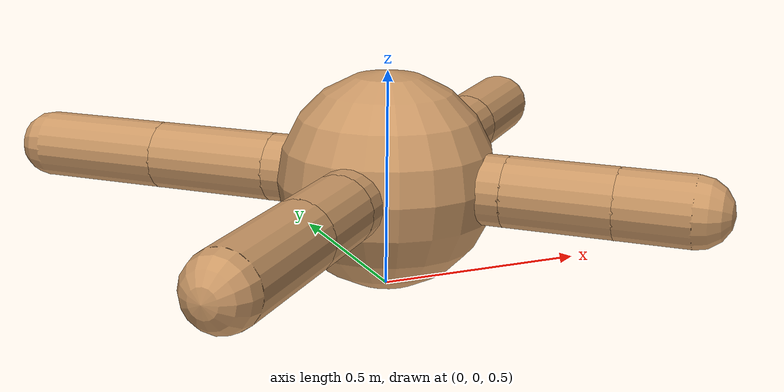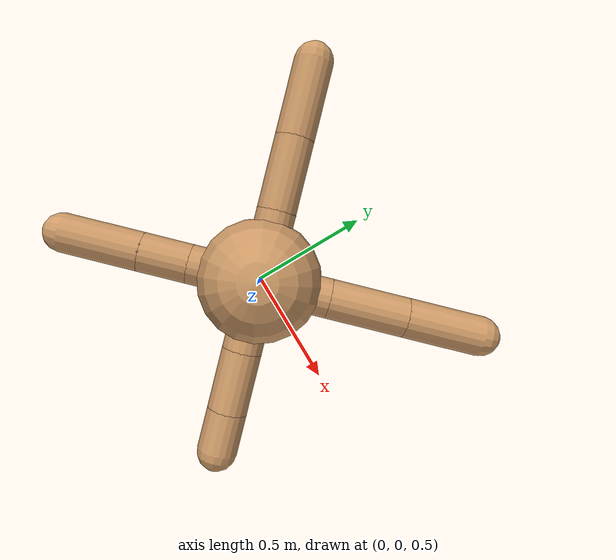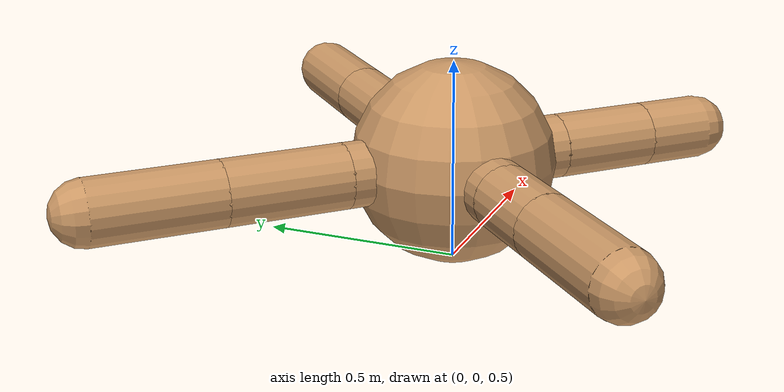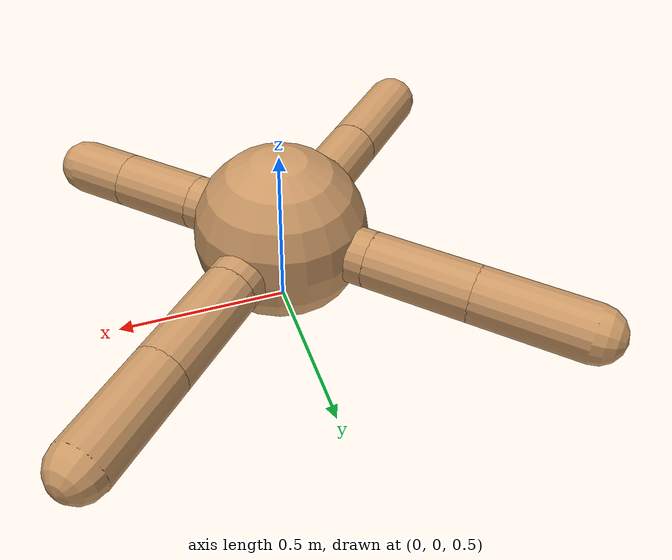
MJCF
<?xml version="1.0" ?>
<mujoco>
    <default>
        <joint armature="1" damping="1" limited="true"/>
        <geom condim="3" conaffinity="0" density="5.0" friction="1 0.5 0.5" margin="0.01" rgba="0.8 0.6 0.4 1"/>
    </default>
    <worldbody>
        <body name="Base" pos="0.0 0.0 0.75">
            <joint type="free" armature="0" damping="0" limited="false" margin="0.01" pos="0 0 0"/>
            <geom type="sphere" rgba="0.8 0.6 0.4 1" size="0.25"/>
            <camera name="track" mode="trackcom" pos="0 -3 0.3" xyaxes="1 0 0 0 0 1"/>
            <geom name="limb0" type="capsule" fromto="0 0 0 0.2 0.2 0.0" size="0.08"/>
            <body name="rod_0.1" pos="0.3096939811746259 0.3096939811746259 0.0">
                <geom type="capsule" fromto="-0.10969398117462587 -0.10969398117462587 -0.0 0.10969398117462587 0.10969398117462587 0.0" size="0.08" name="geom_0.1"/>
                <site pos="0 0 0" quat="0.9238795325112867 0.0 0.0 0.38268343236508984" name="site_0.1"/>
                <joint type="hinge" pos="-0.10969398117462587 -0.10969398117462587 -0.0" axis="0 0 1" range="-30 30" name="joint_Base=rod_0.1"/>
                <body pos="-0.10969398117462587 -0.10969398117462587 -0.0" name="p0">
                    <site name="p0"/>
                </body>
                <body name="rod_1.2" pos="0.21643958648267544 0.21643958648267544 0.0">
                    <geom type="capsule" fromto="-0.10674560530804958 -0.10674560530804958 -0.0 0.10674560530804958 0.10674560530804958 0.0" size="0.08" name="geom_1.2"/>
                    <site pos="0 0 0" quat="0.9238795325112867 0.0 0.0 0.3826834323650898" name="site_1.2"/>
                    <joint type="hinge" pos="-0.10674560530804958 -0.10674560530804958 -0.0" axis="-1 1 0" range="30 70" name="joint_rod_0.1=rod_1.2"/>
                    <body pos="-0.10674560530804958 -0.10674560530804958 -0.0" name="p1">
                        <site name="p1"/>
                    </body>
                </body>
            </body>
            <geom name="limb1" type="capsule" fromto="0 0 0 -0.2 0.2 0.0" size="0.08"/>
            <body name="rod_3.4" pos="-0.3052490165335061 0.3052490165335061 0.0">
                <geom type="capsule" fromto="0.10524901653350607 -0.10524901653350607 -0.0 -0.10524901653350607 0.10524901653350607 0.0" size="0.08" name="geom_3.4"/>
                <site pos="0 0 0" quat="0.38268343236508984 0.0 -0.0 0.9238795325112867" name="site_3.4"/>
                <joint type="hinge" pos="0.10524901653350607 -0.10524901653350607 -0.0" axis="0 0 1" range="-30 30" name="joint_Base=rod_3.4"/>
                <body pos="0.10524901653350607 -0.10524901653350607 -0.0" name="p3">
                    <site name="p3"/>
                </body>
                <body name="rod_4.5" pos="-0.21644347980435832 0.21644347980435832 0.0">
                    <geom type="capsule" fromto="0.11119446327085225 -0.11119446327085225 -0.0 -0.11119446327085225 0.11119446327085225 0.0" size="0.08" name="geom_4.5"/>
                    <site pos="0 0 0" quat="0.38268343236508984 0.0 -0.0 0.9238795325112867" name="site_4.5"/>
                    <joint type="hinge" pos="0.11119446327085225 -0.11119446327085225 -0.0" axis="1 1 0" range="-70 -30" name="joint_rod_3.4=rod_4.5"/>
                    <body pos="0.11119446327085225 -0.11119446327085225 -0.0" name="p4">
                        <site name="p4"/>
                    </body>
                </body>
            </body>
            <geom name="limb2" type="capsule" fromto="0 0 0 -0.2 -0.2 0.0" size="0.08"/>
            <body name="rod_6.7" pos="-0.2694520638735073 -0.2694520638735073 0.0">
                <geom type="capsule" fromto="0.0694520638735073 0.0694520638735073 -0.0 -0.0694520638735073 -0.0694520638735073 0.0" size="0.08" name="geom_6.7"/>
                <site pos="0 0 0" quat="0.38268343236508984 0.0 -0.0 -0.9238795325112867" name="site_6.7"/>
                <joint type="hinge" pos="0.0694520638735073 0.0694520638735073 -0.0" axis="0 0 1" range="-30 30" name="joint_Base=rod_6.7"/>
                <body pos="0.0694520638735073 0.0694520638735073 -0.0" name="p6">
                    <site name="p6"/>
                </body>
                <body name="rod_7.8" pos="-0.182060959104595 -0.182060959104595 0.0">
                    <geom type="capsule" fromto="0.11260889523108769 0.11260889523108769 -0.0 -0.11260889523108769 -0.11260889523108769 0.0" size="0.08" name="geom_7.8"/>
                    <site pos="0 0 0" quat="0.38268343236508984 0.0 -0.0 -0.9238795325112867" name="site_7.8"/>
                    <joint type="hinge" pos="0.11260889523108769 0.11260889523108769 -0.0" axis="-1 1 0" range="-70 -30" name="joint_rod_6.7=rod_7.8"/>
                    <body pos="0.11260889523108769 0.11260889523108769 -0.0" name="p7">
                        <site name="p7"/>
                    </body>
                </body>
            </body>
            <geom name="limb3" type="capsule" fromto="0 0 0 0.2 -0.2 0.0" size="0.08"/>
            <body name="rod_9.10" pos="0.2858387596457549 -0.2858387596457549 0.0">
                <geom type="capsule" fromto="-0.08583875964575485 0.08583875964575485 -0.0 0.08583875964575485 -0.08583875964575485 0.0" size="0.08" name="geom_9.10"/>
                <site pos="0 0 0" quat="0.9238795325112867 0.0 0.0 -0.38268343236508984" name="site_9.10"/>
                <joint type="hinge" pos="-0.08583875964575485 0.08583875964575485 -0.0" axis="0 0 1" range="-30 30" name="joint_Base=rod_9.10"/>
                <body pos="-0.08583875964575485 0.08583875964575485 -0.0" name="p9">
                    <site name="p9"/>
                </body>
                <body name="rod_10.11" pos="0.1438637674906952 -0.1438637674906952 0.0">
                    <geom type="capsule" fromto="-0.05802500784494036 0.05802500784494036 -0.0 0.05802500784494036 -0.05802500784494036 0.0" size="0.08" name="geom_10.11"/>
                    <site pos="0 0 0" quat="0.9238795325112867 0.0 0.0 -0.3826834323650898" name="site_10.11"/>
                    <joint type="hinge" pos="-0.05802500784494036 0.05802500784494036 -0.0" axis="1 1 0" range="30 70" name="joint_rod_9.10=rod_10.11"/>
                    <body pos="-0.05802500784494036 0.05802500784494036 -0.0" name="p10">
                        <site name="p10"/>
                    </body>
                </body>
            </body>
        </body>
    </worldbody>
    <actuator>
        <motor gear="150" ctrlrange="-1.0 1.0" ctrllimited="true" joint="joint_Base=rod_0.1"/>
        <motor gear="150" ctrlrange="-1.0 1.0" ctrllimited="true" joint="joint_rod_0.1=rod_1.2"/>
        <motor gear="150" ctrlrange="-1.0 1.0" ctrllimited="true" joint="joint_Base=rod_3.4"/>
        <motor gear="150" ctrlrange="-1.0 1.0" ctrllimited="true" joint="joint_rod_3.4=rod_4.5"/>
        <motor gear="150" ctrlrange="-1.0 1.0" ctrllimited="true" joint="joint_Base=rod_6.7"/>
        <motor gear="150" ctrlrange="-1.0 1.0" ctrllimited="true" joint="joint_rod_6.7=rod_7.8"/>
        <motor gear="150" ctrlrange="-1.0 1.0" ctrllimited="true" joint="joint_Base=rod_9.10"/>
        <motor gear="150" ctrlrange="-1.0 1.0" ctrllimited="true" joint="joint_rod_9.10=rod_10.11"/>
    </actuator>
    <sensor>
        <accelerometer site="site_0.1"/>
        <gyro site="site_0.1"/>
        <magnetometer site="site_0.1"/>
        <accelerometer site="site_1.2"/>
        <gyro site="site_1.2"/>
        <magnetometer site="site_1.2"/>
        <accelerometer site="site_3.4"/>
        <gyro site="site_3.4"/>
        <magnetometer site="site_3.4"/>
        <accelerometer site="site_4.5"/>
        <gyro site="site_4.5"/>
        <magnetometer site="site_4.5"/>
        <accelerometer site="site_6.7"/>
        <gyro site="site_6.7"/>
        <magnetometer site="site_6.7"/>
        <accelerometer site="site_7.8"/>
        <gyro site="site_7.8"/>
        <magnetometer site="site_7.8"/>
        <accelerometer site="site_9.10"/>
        <gyro site="site_9.10"/>
        <magnetometer site="site_9.10"/>
        <accelerometer site="site_10.11"/>
        <gyro site="site_10.11"/>
        <magnetometer site="site_10.11"/>
    </sensor>
    <contact>
        <pair geom1="geom_0.1" geom2="floor"/>
        <pair geom1="geom_1.2" geom2="floor"/>
        <pair geom1="geom_3.4" geom2="floor"/>
        <pair geom1="geom_4.5" geom2="floor"/>
        <pair geom1="geom_6.7" geom2="floor"/>
        <pair geom1="geom_7.8" geom2="floor"/>
        <pair geom1="geom_9.10" geom2="floor"/>
        <pair geom1="geom_10.11" geom2="floor"/>
    </contact>
</mujoco>
